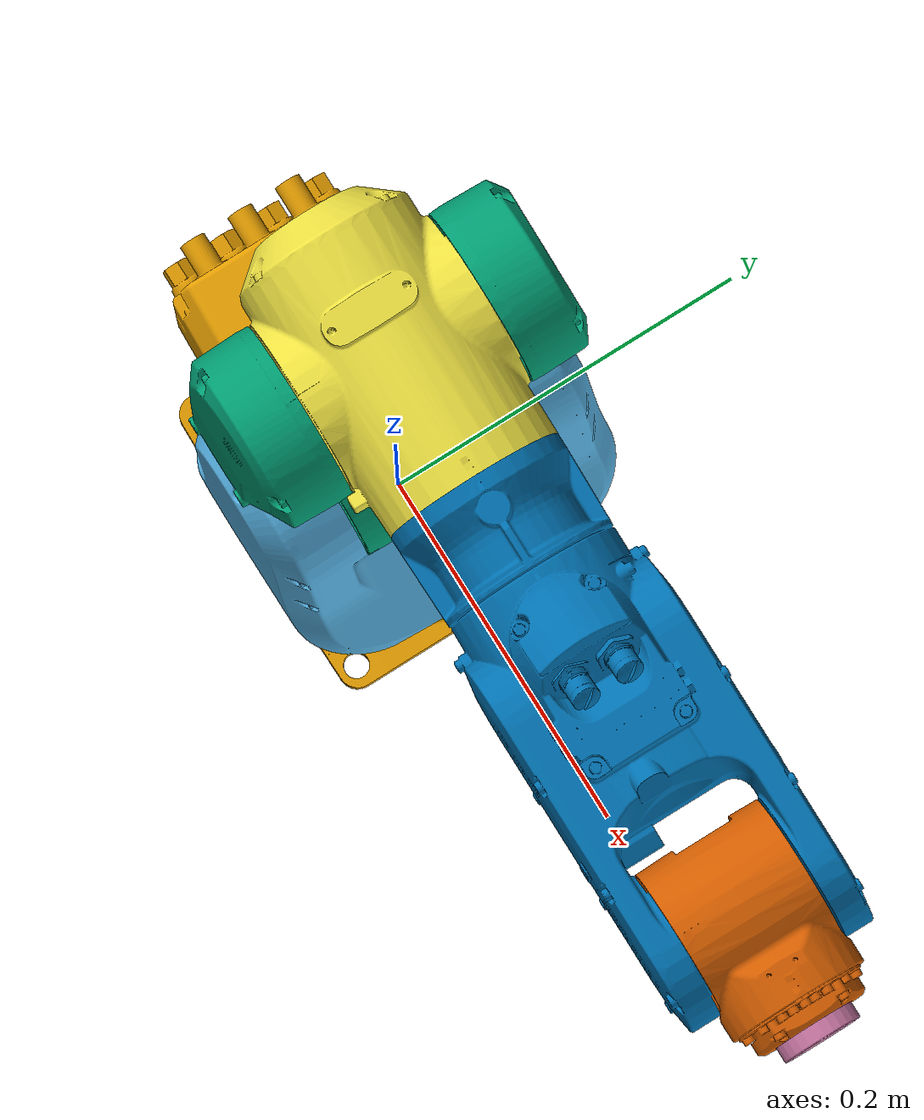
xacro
<?xml version="1.0"?>
<robot xmlns:xacro="http://www.ros.org/wiki/xacro" name="abb_crb1100_4_58">
    <xacro:arg name="initial_positions_file" default="initial_positions.yaml" />

    <!-- Import abb_crb1100_4_58 urdf file -->
    <xacro:include filename="$(find abb_crb1100_support)/urdf/crb1100_4_58.xacro" />

    <!-- Import control_xacro -->
    <xacro:include filename="abb_crb1100_4_58.ros2_control.xacro" />

    <!-- ros2_control -->
    <xacro:abb_crb1100_4_58_ros2_control
        name="ABBMultiInterfaceHardware"
        prefix=""
        initial_positions_file="$(arg initial_positions_file)"
        use_fake_hardware="${use_fake_hardware}"
        rws_ip="${rws_ip}"
        rws_port="${rws_port}"/>

</robot>

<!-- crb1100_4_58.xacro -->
<robot name="abb_crb1100_4_58" xmlns:xacro="http://ros.org/wiki/xacro">
  <xacro:arg name="use_fake_hardware" default="true"/>
  <xacro:property name="use_fake_hardware" value="$(arg use_fake_hardware)"/>
  <xacro:arg name="rws_ip" default="None"/>
  <xacro:property name="rws_ip" value="$(arg rws_ip)"/>
  <xacro:arg name="rws_port" default="80"/>
  <xacro:property name="rws_port" value="$(arg rws_port)"/>
  <xacro:arg name="configure_via_rws" default="false"/>
  <xacro:property name="configure_via_rws" value="$(arg configure_via_rws)"/>
  <!-- Robot description -->
  <xacro:include filename="$(find abb_crb1100_support)/urdf/crb1100_4_58_macro.xacro"/>
  <xacro:abb_crb1100_4_58 prefix=""/>

  <!-- ros2_control -->
  <xacro:include filename="$(find abb_crb1100_support)/urdf/crb1100.ros2_control.xacro" />
  <xacro:abb_ros2_control
    name="ABBMultiInterfaceHardware"
    prefix=""
    use_fake_hardware="${use_fake_hardware}"
    rws_ip="${rws_ip}"
    rws_port="${rws_port}"
    configure_via_rws="${configure_via_rws}"/>

</robot>

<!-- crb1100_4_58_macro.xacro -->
<robot xmlns:xacro="http://ros.org/wiki/xacro">
  <xacro:include filename="$(find abb_resources)/urdf/common_materials.xacro"/>

  <xacro:macro name="abb_crb1100_4_58" params="prefix">
    <!-- link list -->
    <link name="${prefix}base_link">
      <visual name="visual">
        <geometry>
          <mesh filename="package://abb_crb1100_support/meshes/crb1100_4_58/base_link.stl" scale="0.001 0.001 0.001"/>
        </geometry>
        <xacro:material_abb_white />
      </visual>
      <collision name="Base_Box001">
        <origin xyz="-0.00780786 0.000316538 0.006" rpy="0.0 0.0 0.0"/>
        <geometry>
          <box size="0.174 0.158 0.012"/>
        </geometry>
      </collision>
      <collision name="Base_Cylinder001">
        <origin xyz="0.0 0.0 0.0728" rpy="0.0 0.0 0.0"/>
        <geometry>
          <cylinder length="0.1456" radius="0.0719661"/>
        </geometry>
      </collision>
      <collision name="Base_Box002">
        <origin xyz="-0.079843 0.0 0.0749219" rpy="1.5708 0.0 -1.5708"/>
        <geometry>
          <box size="0.110911 0.139336 0.0984126"/>
        </geometry>
      </collision>
      <collision name="Base_Box003">
        <origin xyz="-0.13596 0.0 0.103253" rpy="1.5708 0.0 -1.5708"/>
        <geometry>
          <box size="0.0964925 0.0459809 0.0285397"/>
        </geometry>
      </collision>
      <collision name="Base_Box004">
        <origin xyz="-0.131965 0.0 0.045724" rpy="1.5708 0.0 -1.5708"/>
        <geometry>
          <box size="0.0635693 0.0710773 0.0205486"/>
        </geometry>
        <xacro:material_abb_yellow />
      </collision>
    </link>
    <link name="${prefix}link_1">
      <visual>
        <geometry>
          <mesh filename="package://abb_crb1100_support/meshes/crb1100_4_58/link_1.stl" scale="0.001 0.001 0.001"/>
        </geometry>
        <xacro:material_abb_white />
      </visual>
      <collision name="Link1_Cylinder002">
        <origin xyz="0.0 0.0 0.021216" rpy="0.0 0.0 0.0"/>
        <geometry>
            <cylinder length="0.0695336" radius="0.0880028"/>
        </geometry>
      </collision>
      <collision name="Link1_Cylinder003">
        <origin xyz="-2.53022e-05 -0.000703648 0.1678" rpy="1.5708 0.0 0.0"/>
        <geometry>
            <cylinder length="0.184809" radius="0.0517311"/>
        </geometry>
      </collision>
      <collision name="Link1_Box005">
        <origin xyz="0.00740042 -0.0015163 0.1093" rpy="0.0 -0.131547 0.0"/>
        <geometry>
          <box size="0.0988751 0.182474 0.12116"/>
        </geometry>
      </collision>
      <collision name="Link1_Box007">
        <origin xyz="0.0360969 -0.00151631 0.0496" rpy="0.0 0.317913 0.0"/>
        <geometry>
          <box size="0.0988751 0.164519 0.0783661"/>
        </geometry>
        <xacro:material_abb_yellow />
      </collision>
    </link>
    <link name="${prefix}link_2">
      <visual>
        <geometry>
          <mesh filename="package://abb_crb1100_support/meshes/crb1100_4_58/link_2.stl" scale="0.001 0.001 0.001"/>
        </geometry>
        <xacro:material_abb_white />
      </visual>
      <collision name="Link2_Box008">
        <origin xyz="-0.0174075 0.0 0.0966" rpy="0.0 0.0 0.0"/>
        <geometry>
          <box size="0.0667305 0.0928778 0.198962"/>
        </geometry>
      </collision>
      <collision name="Link2_Cylinder004">
        <origin xyz="-0.000196304 -0.000291631 0.2798" rpy="1.5708 0.0 0.0"/>
        <geometry>
            <cylinder length="0.178434" radius="0.0465957"/>
        </geometry>
      </collision>
      <collision name="Link2_Box009">
        <origin xyz="-0.0103307 0.0 0.2046" rpy="0.0 0.01412 0.0"/>
        <geometry>
          <box size="0.0734036 0.176468 0.163149"/>
        </geometry>
        <xacro:material_abb_yellow />
      </collision>
    </link>
    <link name="${prefix}link_3">
      <visual>
        <geometry>
          <mesh filename="package://abb_crb1100_support/meshes/crb1100_4_58/link_3.stl" scale="0.001 0.001 0.001"/>
        </geometry>
        <xacro:material_abb_white />
      </visual>
      <collision name="Link3_Cylinder005">
      <origin xyz="-1.58772e-05 0.0 0.010021" rpy="1.5708 0.0 -1.5708"/>
        <geometry>
            <cylinder length="0.146229" radius="0.0454588"/>
        </geometry>
      </collision>
      <collision name="Link3_Cylinder006">
      <origin xyz="0.000346811 -6.09569e-05 0.000321" rpy="1.5708 0.0 -1.19209e-07"/>
        <geometry>
            <cylinder length="0.0954674" radius="0.0454588"/>
        </geometry>
      </collision>
      <collision name="Link3_Cylinder007">
      <origin xyz="-1.58772e-05 0.0 -0.0176" rpy="1.5708 0.0 -1.5708"/>
        <geometry>
            <cylinder length="0.146229" radius="0.0454588"/>
        </geometry>
      </collision>
      <collision name="Link3_Box010">
      <origin xyz="-0.0169157 0.0 0.0469" rpy="0.0 0.0 0.0"/>
        <geometry>
          <box size="0.018736 0.0498875 0.0203162"/>
        </geometry>
      </collision>
      <collision name="Link3_Box011">
      <origin xyz="-0.0289604 -0.0174093 -0.041" rpy="0.0 0.0 0.0"/>
        <geometry>
          <box size="0.018736 0.0498875 0.0262079"/>
        </geometry>
        <xacro:material_abb_yellow />
      </collision>
    </link>
    <link name="${prefix}link_4">
      <visual>
        <geometry>
          <mesh filename="package://abb_crb1100_support/meshes/crb1100_4_58/link_4.stl" scale="0.001 0.001 0.001"/>
        </geometry>
        <xacro:material_abb_white />
      </visual>
      <collision name="Link4_Cylinder008">
        <origin xyz="0.08173 0.0 0.0" rpy="1.5708 0.0 1.5708"/>
        <geometry>
            <cylinder length="0.163185" radius="0.0452081"/>
        </geometry>
      </collision>
      <collision name="Link4_Cylinder009">
        <origin xyz="0.2265 0.0 0.0" rpy="1.5708 0.0 -1.74846e-07"/>
        <geometry>
            <cylinder length="0.102" radius="0.038"/>
        </geometry>
      </collision>
      <collision name="Link4_Cylinder010">
        <origin xyz="0.1055 0.0 0.0" rpy="1.5708 0.0 -1.74846e-07"/>
        <geometry>
            <cylinder length="0.102" radius="0.038"/>
        </geometry>
      </collision>
      <collision name="Link4_Box012">
        <origin xyz="0.166 0.0 0.0" rpy="0.0 0.0 0.0"/>
        <geometry>
          <box size="0.12 0.102032 0.076"/>
        </geometry>
      </collision>
      <collision name="Link4_Box013">
        <origin xyz="0.0812 0.0 0.032546" rpy="0.0 -0.436332 0.0"/>
        <geometry>
          <box size="0.0893911 0.0609485 0.0468981"/>
        </geometry>
      </collision>
      <collision name="Link4_Box014">
        <origin xyz="0.1297 0.0 0.030963" rpy="0.0 0.0 0.0"/>
        <geometry>
          <box size="0.0339686 0.060339 0.0468981"/>
        </geometry>
        <xacro:material_abb_yellow />
      </collision>
    </link>
    <link name="${prefix}link_5">
      <visual name="link_5">
        <geometry>
          <mesh filename="package://abb_crb1100_support/meshes/crb1100_4_58/link_5.stl" scale="0.001 0.001 0.001"/>
        </geometry>
        <xacro:material_abb_white />
      </visual>
      <collision name="Link4_Cylinder011">
        <origin xyz="0.024441 0.0 0.0" rpy="1.5708 0.0 -1.5708"/>
        <geometry>
            <cylinder length="0.0780414" radius="0.0353863"/>
        </geometry>
        <xacro:material_abb_yellow />
      </collision>
    </link>
    <link name="${prefix}link_6">
      <visual name="link_6">
        <geometry>
          <mesh filename="package://abb_crb1100_support/meshes/crb1100_4_58/link_6.stl" scale="0.001 0.001 0.001"/>
        </geometry>
        <xacro:material_abb_white />
      </visual>
      <collision name="Link6_Cylinder011">
        <geometry>
          <mesh filename="package://abb_crb1100_support/meshes/crb1100_4_58/link_6.stl" scale="0.001 0.001 0.001"/>
          <xacro:material_abb_yellow />
        </geometry>
      </collision>
    </link>
    <!-- end of link list -->

    <!-- joint list -->
    <joint name="${prefix}joint_1" type="revolute">
      <origin xyz="0 0 0.1595" rpy="0 0 0"/>
      <parent link="${prefix}base_link"/>
      <child link="${prefix}link_1"/>
      <axis xyz="0 0 1"/>
      <limit lower="${radians(-230)}" upper="${radians(230)}" effort="1000" velocity="${radians(460)}"/>
      <dynamics damping="10.0" friction="1.0"/>
    </joint>
    <joint name="${prefix}joint_2" type="revolute">
      <origin xyz="0.0 0.0 0.1675" rpy="0 0 0"/>
      <parent link="${prefix}link_1"/>
      <child link="${prefix}link_2"/>
      <axis xyz="0 1 0"/>
      <limit lower="${radians(-115)}" upper="${radians(113)}" effort="1000" velocity="${radians(360)}"/>
      <dynamics damping="2.0" friction="1.0"/>
    </joint>
    <joint name="${prefix}joint_3" type="revolute">
      <origin xyz="0.0 0 0.280" rpy="0 0 0"/>
      <parent link="${prefix}link_2"/>
      <child link="${prefix}link_3"/>
      <axis xyz="0 1 0"/>
      <limit lower="${radians(-205)}" upper="${radians(55)}" effort="1000" velocity="${radians(280)}"/>
      <dynamics damping="2.0" friction="1.0"/>
    </joint>
    <joint name="${prefix}joint_4" type="revolute">
      <origin xyz="0.0725 0 0.01" rpy="0 0 0"/>
      <parent link="${prefix}link_3"/>
      <child link="${prefix}link_4"/>
      <axis xyz="1 0 0"/>
      <!-- Note: Original limits are [-400, 400] -->
      <limit lower="${radians(-230)}" upper="${radians(230)}" effort="1000" velocity="${radians(560)}"/>
      <dynamics damping="2.0" friction="1.0"/>
    </joint>
    <joint name="${prefix}joint_5" type="revolute">
      <origin xyz="0.2265 0 0" rpy="0 0 0"/>
      <parent link="${prefix}link_4"/>
      <child link="${prefix}link_5"/>
      <axis xyz="0 1 0"/>
      <limit lower="${radians(-125)}" upper="${radians(120)}" effort="1000" velocity="${radians(420)}"/>
      <dynamics damping="2.0" friction="1.0"/>
    </joint>
    <joint name="${prefix}joint_6" type="revolute">
      <origin xyz="0.0634 0 0" rpy="0 0 0"/>
      <parent link="${prefix}link_5"/>
      <child link="${prefix}link_6"/>
      <axis xyz="1 0 0"/>
      <limit lower="${radians(-400)}" upper="${radians(400)}" effort="1000" velocity="${radians(750)}"/>
      <dynamics damping="2.0" friction="1.0"/>
    </joint>
    <!-- end of joint list -->

    <!-- ROS-Industrial 'base' frame: base_link to ABB World Coordinates transform -->
    <link name="${prefix}base" />
    <joint name="${prefix}base_link-base" type="fixed">
      <origin xyz="0 0 0" rpy="0 0 0"/>
      <parent link="${prefix}base_link"/>
      <child link="${prefix}base"/>
    </joint>

    <!-- ROS-Industrial 'flange' frame: attachment point for EEF models -->
    <link name="${prefix}flange"/>
    <joint type="fixed" name="${prefix}joint_4-flange">
      <origin xyz="0 0 0" rpy="0 0 0"/>
      <parent link="${prefix}link_6"/>
      <child link="${prefix}flange"/>
    </joint>

    <!-- ROS-Industrial 'tool0' frame: all-zeros tool frame -->
    <link name="${prefix}tool0" />
    <joint name="${prefix}link_6-tool0" type="fixed">
      <origin xyz="0 0 0" rpy="0 ${radians(90)} 0" />
      <parent link="${prefix}flange" />
      <child link="${prefix}tool0" />
    </joint>
  </xacro:macro>
</robot>
